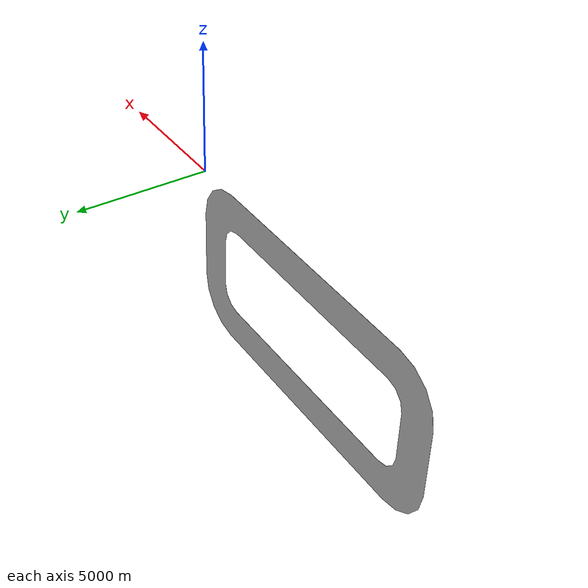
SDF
<sdf version="1.6">
 <world name="default">
  <light name="sun" type="directional">
   <pose>0 0 10 0 -0 0</pose>
   <diffuse>0.8 0.8 0.8 1</diffuse>
   <specular>0.1 0.1 0.1 1</specular>
   <attenuation>
    <range>1000</range>
    <constant>0.9</constant>
    <linear>0.01</linear>
    <quadratic>0.001</quadratic>
   </attenuation>
   <direction>-0.5 0.5 -1</direction>
  </light>
  <model name="ground_plane">
   <static>1</static>
   <link name="link">
    <collision name="collision">
     <geometry><plane><normal>0 0 1</normal><size>100 100</size></plane></geometry>
     <surface><friction><ode><mu>100</mu><mu2>50</mu2></ode></friction></surface>
    </collision>
    <visual name="visual">
     <cast_shadows>0</cast_shadows>
     <geometry><plane><normal>0 0 1</normal><size>100 100</size></plane></geometry>
     <material>
      <script><uri>file://media/materials/scripts/gazebo.material</uri><name>Gazebo/Grey</name></script>
     </material>
    </visual>
   </link>
  </model>
  <gravity>0 0 -9.8</gravity>
  <magnetic_field>6e-06 2.3e-05 -4.2e-05</magnetic_field>
  <atmosphere type="adiabatic"/>
  <physics name="default_physics" default="0" type="ode">
   <max_step_size>0.001</max_step_size>
   <real_time_factor>1</real_time_factor>
   <real_time_update_rate>1000</real_time_update_rate>
  </physics>
  <scene><ambient>0.4 0.4 0.4 1</ambient><background>0.7 0.7 0.7 1</background><shadows>1</shadows></scene>
  <spherical_coordinates>
   <surface_model>EARTH_WGS84</surface_model>
   <latitude_deg>0</latitude_deg>
   <longitude_deg>0</longitude_deg>
   <elevation>0</elevation>
   <heading_deg>0</heading_deg>
  </spherical_coordinates>
  <model name="track">
   <link name="Part1">
    <inertial>
     <pose>-5.9741 -0.0025 4.5731 0 -0 0</pose>
     <mass>871.4</mass>
     <inertia>
      <ixx>930920</ixx>
      <ixy>8.72035e-12</ixy>
      <ixz>-142550</ixz>
      <iyy>2.0554e+06</iyy>
      <iyz>-5.70018e-11</iyz>
      <izz>1.1245e+06</izz>
     </inertia>
    </inertial>
    <collision name="Part1_collision">
     <pose>0 0 0 1.5708 -0 0</pose>
     <geometry>
      <mesh><scale>1 1 1</scale><uri>/home/rg28/catkin_ws/src/Track/meshes/Track.STL</uri></mesh>
     </geometry>
    </collision>
    <visual name="Part1_visual">
     <pose>0 0 0 1.5708 -0 0</pose>
     <geometry>
      <mesh><scale>1 1 1</scale><uri>/home/rg28/catkin_ws/src/Track/meshes/Track.STL</uri></mesh>
     </geometry>
    </visual>
   </link>
   <pose>6.33423 0.218194 -1e-05 -1.5708 -0 -0.007992</pose>
  </model>
 </world>
</sdf>
